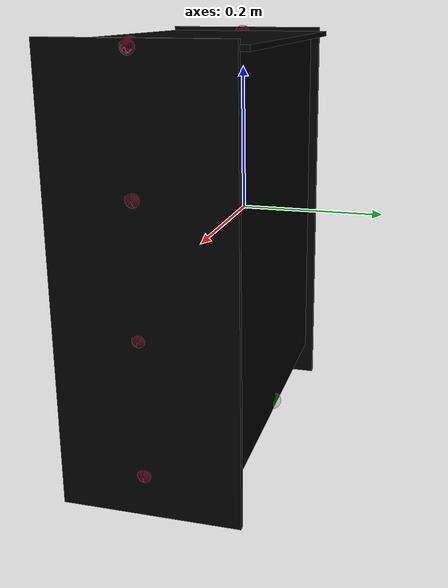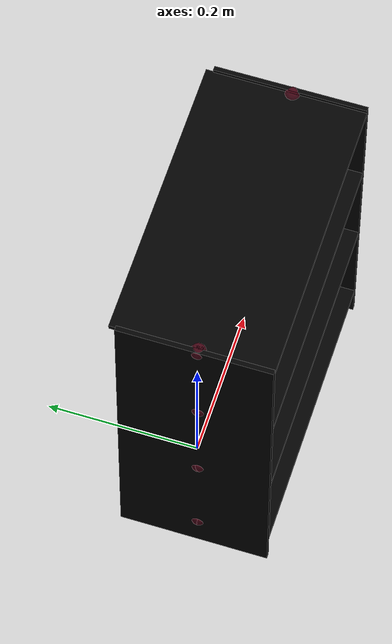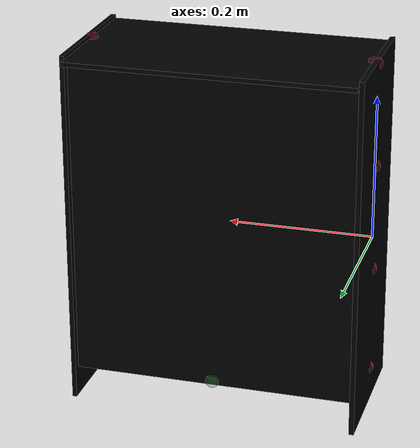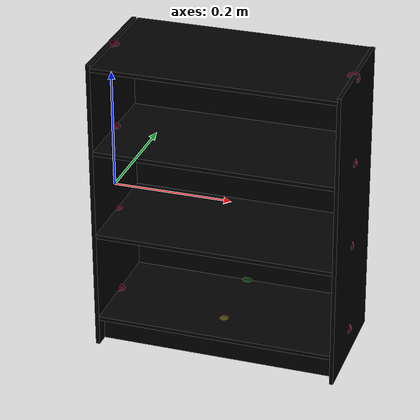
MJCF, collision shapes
<mujoco model="bookcase_billy_0190">
    <custom>
        <numeric data="-0.59152 0.200584 0.003247 0.50002 -0.49998 -0.50002 -0.49998" name="0_part0_initpos"/>
        <numeric data="0.204606 0.237244 0.003247 0.674164 0.0 0.0 0.738582" name="7_part7_initpos"/>
        <numeric data="-0.063768 0.239229 0.003247 0.688353 0.0 0.0 0.725376" name="6_part6_initpos"/>
        <numeric data="0.17315 -0.227664 0.001744 0.707089 0.707089 -0.005017 -0.005017" name="5_part5_initpos"/>
        <numeric data="-0.32363 0.248487 0.003247 0.69849 -0.0 -0.0 0.71562" name="4_part4_initpos"/>
        <numeric data="0.497228 0.203915 0.002886 0.499994 -0.500006 0.499994 0.500006" name="3_part3_initpos"/>
        <numeric data="-0.251576 -0.026907 0.003247 0.707101 0.7071 -0.00299 -0.00299" name="2_part2_initpos"/>
        <numeric data="-0.287173 -0.203213 0.003247 0.998793 0.0 0.0 -0.04911" name="1_part1_initpos"/>
    </custom>
    <asset>
        <mesh file="bookcase_billy_0190/0.stl" name="part0"
              scale="0.0005160960000000001 0.0005160960000000001 0.0005160960000000001"/>
        <mesh file="bookcase_billy_0190/7.stl" name="part7"
              scale="0.0005160960000000001 0.0005160960000000001 0.0005160960000000001"/>
        <mesh file="bookcase_billy_0190/6.stl" name="part6"
              scale="0.0005160960000000001 0.0005160960000000001 0.0005160960000000001"/>
        <mesh file="bookcase_billy_0190/5.stl" name="part5"
              scale="0.0005160960000000001 0.0005160960000000001 0.0005160960000000001"/>
        <mesh file="bookcase_billy_0190/4.stl" name="part4"
              scale="0.0005160960000000001 0.0005160960000000001 0.0005160960000000001"/>
        <mesh file="bookcase_billy_0190/3.stl" name="part3"
              scale="0.0005160960000000001 0.0005160960000000001 0.0005160960000000001"/>
        <mesh file="bookcase_billy_0190/2.stl" name="part2"
              scale="0.0005160960000000001 0.0005160960000000001 0.0005160960000000001"/>
        <mesh file="bookcase_billy_0190/1.stl" name="part1"
              scale="0.0005160960000000001 0.0005160960000000001 0.0005160960000000001"/>
    </asset>
    <equality>
        <weld active="false" body1="5_part5" body2="4_part4" solimp="1 1 0.5" solref="0.01 0.3"/>
        <weld active="false" body1="5_part5" body2="7_part7" solimp="1 1 0.5" solref="0.01 0.3"/>
        <weld active="false" body1="5_part5" body2="1_part1" solimp="1 1 0.5" solref="0.01 0.3"/>
        <weld active="false" body1="5_part5" body2="6_part6" solimp="1 1 0.5" solref="0.01 0.3"/>
        <weld active="false" body1="0_part0" body2="4_part4" solimp="1 1 0.5" solref="0.01 0.3"/>
        <weld active="false" body1="0_part0" body2="7_part7" solimp="1 1 0.5" solref="0.01 0.3"/>
        <weld active="false" body1="0_part0" body2="1_part1" solimp="1 1 0.5" solref="0.01 0.3"/>
        <weld active="false" body1="0_part0" body2="6_part6" solimp="1 1 0.5" solref="0.01 0.3"/>
        <weld active="false" body1="3_part3" body2="4_part4" solimp="1 1 0.5" solref="0.01 0.3"/>
        <weld active="false" body1="3_part3" body2="7_part7" solimp="1 1 0.5" solref="0.01 0.3"/>
        <weld active="false" body1="3_part3" body2="1_part1" solimp="1 1 0.5" solref="0.01 0.3"/>
        <weld active="false" body1="3_part3" body2="6_part6" solimp="1 1 0.5" solref="0.01 0.3"/>
        <weld active="false" body1="2_part2" body2="4_part4" solimp="1 1 0.5" solref="0.01 0.3"/>
        <weld active="false" body1="2_part2" body2="7_part7" solimp="1 1 0.5" solref="0.01 0.3"/>
        <weld active="false" body1="2_part2" body2="1_part1" solimp="1 1 0.5" solref="0.01 0.3"/>
        <weld active="false" body1="2_part2" body2="6_part6" solimp="1 1 0.5" solref="0.01 0.3"/>
    </equality>
    <worldbody>
        <body name="0_part0" pos="0.0 1.032192e-09 0.0" quat="1 0 0 0">
            <geom conaffinity="0" contype="0" density="0" mesh="part0" name="0_part0_mesh" pos="0.0 0.0 0.0"
                  rgba="0.82 0.71 0.55 1" type="mesh"/>
            <site name="0_part0_horizontal_radius_site" pos="0.0 1.032192e-09 0.0" quat="1 0 0 0" rgba="0 0 0 0"
                  size="0.010321919999999998"/>
            <site name="0_part0_top_site" pos="0.0 9.805824e-10 0.24906793274818562" quat="1 0 0 0" rgba="0 0 0 0"
                  size="0.010321919999999998"/>
            <site name="0_part0_bottom_site" pos="0.0 9.805824e-10 -0.24906793274818562" quat="1 0 0 0" rgba="0 0 0 0"
                  size="0.010321919999999998"/>
            <site name="0_part0_corner_site8" pos="-0.0032772096000000003 0.0983162979090432 0.24906793274818562"
                  quat="1 0 0 0" rgba="0 0 0 0" size="0.010321919999999998"/>
            <site name="0_part0_corner_site7" pos="0.0032772096000000003 0.0983162979090432 0.24906793274818562"
                  quat="1 0 0 0" rgba="0 0 0 0" size="0.010321919999999998"/>
            <site name="0_part0_corner_site6" pos="0.0032772096000000003 -0.09831629589626881 0.24906793274818562"
                  quat="1 0 0 0" rgba="0 0 0 0" size="0.010321919999999998"/>
            <site name="0_part0_corner_site5" pos="-0.0032772096000000003 -0.09831629589626881 0.24906793274818562"
                  quat="1 0 0 0" rgba="0 0 0 0" size="0.010321919999999998"/>
            <site name="0_part0_corner_site4" pos="-0.0032772096000000003 0.0983162979090432 -0.24906793274818562"
                  quat="1 0 0 0" rgba="0 0 0 0" size="0.010321919999999998"/>
            <site name="0_part0_corner_site3" pos="0.0032772096000000003 0.0983162979090432 -0.24906793274818562"
                  quat="1 0 0 0" rgba="0 0 0 0" size="0.010321919999999998"/>
            <site name="0_part0_corner_site2" pos="0.0032772096000000003 -0.09831629589626881 -0.24906793274818562"
                  quat="1 0 0 0" rgba="0 0 0 0" size="0.010321919999999998"/>
            <site name="0_part0_corner_site1" pos="-0.0032772096000000003 -0.09831629589626881 -0.24906793274818562"
                  quat="1 0 0 0" rgba="0 0 0 0" size="0.010321919999999998"/>
            <site name="sidepanel-horpanel,0,180,conn_site7" pos="0.004257791999999999 0.0 0.24579071999999996"
                  quat="0.7071067 0 -0.7071068 0" rgba="0.9019 0.0980 0.2941 0.3" size="0.010321919999999998"/>
            <site name="sidepanel-horpanel,0,180,conn_site6"
                  pos="0.0030965759999999993 -0.0016708608 0.10231603199999999" quat="0.7071067 0 -0.7071068 0"
                  rgba="0.9019 0.0980 0.2941 0.3" size="0.010321919999999998"/>
            <site name="sidepanel-horpanel,0,180,conn_site5" pos="0.0032256 -0.0016708608 -0.04773888"
                  quat="0.7071067 0 -0.7071068 0" rgba="0.9019 0.0980 0.2941 0.3" size="0.010321919999999998"/>
            <site name="sidepanel-horpanel,0,180,conn_site4" pos="0.0032256 -0.0016708608 -0.19998719999999998"
                  quat="0.7071067 0 -0.7071068 0" rgba="0.9019 0.0980 0.2941 0.3" size="0.010321919999999998"/>
            <geom density="50" name="noviz_collision_0_part0_0" pos="0.0001806336 0.0037223424 0.0023288831999999995"
                  quat="1 0 0 0" rgba="0 0 0 0" size="0.0034578431999999996 0.10203863040000001 0.2513968128"
                  solref="0.001 1" type="box"/>
        </body>
        <body name="7_part7" pos="0.199909787148288 -0.0033464315953152003 0.1021396950024192" quat="1 0 0 0">
            <geom conaffinity="0" contype="0" density="0" mesh="part7" name="7_part7_mesh" pos="0.0 0.0 0.0"
                  rgba="0.82 0.71 0.55 1" type="mesh"/>
            <site name="7_part7_horizontal_radius_site" pos="-1.5482879999999998e-09 1.4450688e-09 0.0" quat="1 0 0 0"
                  rgba="0 0 0 0" size="0.010321919999999998"/>
            <site name="7_part7_top_site" pos="-1.5482879999999998e-09 1.4966784e-09 0.0032772127481855997"
                  quat="1 0 0 0" rgba="0 0 0 0" size="0.010321919999999998"/>
            <site name="7_part7_bottom_site" pos="-1.5482879999999998e-09 1.4966784e-09 -0.0032772127481855997"
                  quat="1 0 0 0" rgba="0 0 0 0" size="0.010321919999999998"/>
            <site name="7_part7_corner_site8" pos="-0.19663257909657603 0.09496986481704958 0.0032772127481855997"
                  quat="1 0 0 0" rgba="0 0 0 0" size="0.010321919999999998"/>
            <site name="7_part7_corner_site7" pos="0.196632576 0.09496986481704958 0.0032772127481855997" quat="1 0 0 0"
                  rgba="0 0 0 0" size="0.010321919999999998"/>
            <site name="7_part7_corner_site6" pos="0.196632576 -0.0949698618753024 0.0032772127481855997" quat="1 0 0 0"
                  rgba="0 0 0 0" size="0.010321919999999998"/>
            <site name="7_part7_corner_site5" pos="-0.19663257909657603 -0.0949698618753024 0.0032772127481855997"
                  quat="1 0 0 0" rgba="0 0 0 0" size="0.010321919999999998"/>
            <site name="7_part7_corner_site4" pos="-0.19663257909657603 0.09496986481704958 -0.0032772127481855997"
                  quat="1 0 0 0" rgba="0 0 0 0" size="0.010321919999999998"/>
            <site name="7_part7_corner_site3" pos="0.196632576 0.09496986481704958 -0.0032772127481855997"
                  quat="1 0 0 0" rgba="0 0 0 0" size="0.010321919999999998"/>
            <site name="7_part7_corner_site2" pos="0.196632576 -0.0949698618753024 -0.0032772127481855997"
                  quat="1 0 0 0" rgba="0 0 0 0" size="0.010321919999999998"/>
            <site name="7_part7_corner_site1" pos="-0.19663257909657603 -0.0949698618753024 -0.0032772127481855997"
                  quat="1 0 0 0" rgba="0 0 0 0" size="0.010321919999999998"/>
            <site name="horpanel-sidepanel,0,180,conn_site6" pos="-0.1968132096 0.0016708608 0.0001741824"
                  quat="0.7071067 0 -0.7071068 0" rgba="0.9019 0.0980 0.2941 0.3" size="0.010321919999999998"/>
            <site name="horpanel-sidepanel,0,180,conn_site2" pos="0.1962584064 0.0016708608 -0.0008580096000000001"
                  quat="0.7071067 0 0.7071068 0" rgba="0.9019 0.0980 0.2941 0.3" size="0.010321919999999998"/>
            <geom density="50" name="noviz_collision_7_part7_0" pos="0.0 0.0 0.0" quat="1 0 0 0" rgba="0 0 0 0"
                  size="0.196632576 0.09496811520000001 0.0032772096000000003" solref="0.001 1" type="box"/>
        </body>
        <body name="6_part6" pos="0.199909787148288 -0.0033464315953152003 -0.046427141246976" quat="1 0 0 0">
            <geom conaffinity="0" contype="0" density="0" mesh="part6" name="6_part6_mesh" pos="0.0 0.0 0.0"
                  rgba="0.82 0.71 0.55 1" type="mesh"/>
            <site name="6_part6_horizontal_radius_site" pos="-1.5482879999999998e-09 1.4450688e-09 0.0" quat="1 0 0 0"
                  rgba="0 0 0 0" size="0.010321919999999998"/>
            <site name="6_part6_top_site" pos="-1.5482879999999998e-09 1.4966784e-09 0.0032772127481855997"
                  quat="1 0 0 0" rgba="0 0 0 0" size="0.010321919999999998"/>
            <site name="6_part6_bottom_site" pos="-1.5482879999999998e-09 1.4966784e-09 -0.0032772127481855997"
                  quat="1 0 0 0" rgba="0 0 0 0" size="0.010321919999999998"/>
            <site name="6_part6_corner_site8" pos="-0.19663257909657603 0.09496986481704958 0.0032772127481855997"
                  quat="1 0 0 0" rgba="0 0 0 0" size="0.010321919999999998"/>
            <site name="6_part6_corner_site7" pos="0.196632576 0.09496986481704958 0.0032772127481855997" quat="1 0 0 0"
                  rgba="0 0 0 0" size="0.010321919999999998"/>
            <site name="6_part6_corner_site6" pos="0.196632576 -0.0949698618753024 0.0032772127481855997" quat="1 0 0 0"
                  rgba="0 0 0 0" size="0.010321919999999998"/>
            <site name="6_part6_corner_site5" pos="-0.19663257909657603 -0.0949698618753024 0.0032772127481855997"
                  quat="1 0 0 0" rgba="0 0 0 0" size="0.010321919999999998"/>
            <site name="6_part6_corner_site4" pos="-0.19663257909657603 0.09496986481704958 -0.0032772127481855997"
                  quat="1 0 0 0" rgba="0 0 0 0" size="0.010321919999999998"/>
            <site name="6_part6_corner_site3" pos="0.196632576 0.09496986481704958 -0.0032772127481855997"
                  quat="1 0 0 0" rgba="0 0 0 0" size="0.010321919999999998"/>
            <site name="6_part6_corner_site2" pos="0.196632576 -0.0949698618753024 -0.0032772127481855997"
                  quat="1 0 0 0" rgba="0 0 0 0" size="0.010321919999999998"/>
            <site name="6_part6_corner_site1" pos="-0.19663257909657603 -0.0949698618753024 -0.0032772127481855997"
                  quat="1 0 0 0" rgba="0 0 0 0" size="0.010321919999999998"/>
            <site name="horpanel-sidepanel,0,180,conn_site5" pos="-0.1966841856 0.0016708608 -0.0013095936000000002"
                  quat="0.7071067 0 -0.7071068 0" rgba="0.9019 0.0980 0.2941 0.3" size="0.010321919999999998"/>
            <site name="horpanel-sidepanel,0,180,conn_site1" pos="0.1955487744 0.0016708608 0.0006257664000000001"
                  quat="0.7071067 0 0.7071068 0" rgba="0.9019 0.0980 0.2941 0.3" size="0.010321919999999998"/>
            <geom density="50" name="noviz_collision_6_part6_0" pos="0.0 0.0 0.0" quat="1 0 0 0" rgba="0 0 0 0"
                  size="0.196632576 0.09496811520000001 0.0032772096000000003" solref="0.001 1" type="box"/>
        </body>
        <body name="5_part5" pos="0.19990978560000003 0.09340047272263681 0.0196632544518144" quat="1 0 0 0">
            <geom conaffinity="0" contype="0" density="0" mesh="part5" name="5_part5_mesh" pos="0.0 0.0 0.0"
                  rgba="0.82 0.71 0.55 1" type="mesh"/>
            <site name="5_part5_horizontal_radius_site" pos="1.032192e-10 0.0 0.0" quat="1 0 0 0" rgba="0 0 0 0"
                  size="0.010321919999999998"/>
            <site name="5_part5_top_site" pos="1.032192e-10 0.0 0.22612746239999998" quat="1 0 0 0" rgba="0 0 0 0"
                  size="0.010321919999999998"/>
            <site name="5_part5_bottom_site" pos="1.032192e-10 0.0 -0.22612746239999998" quat="1 0 0 0" rgba="0 0 0 0"
                  size="0.010321919999999998"/>
            <site name="5_part5_corner_site8" pos="-0.19827118069678082 0.0017770625703936 0.22612746239999998"
                  quat="1 0 0 0" rgba="0 0 0 0" size="0.010321919999999998"/>
            <site name="5_part5_corner_site7" pos="0.1982711809032192 0.0017770625703936 0.22612746239999998"
                  quat="1 0 0 0" rgba="0 0 0 0" size="0.010321919999999998"/>
            <site name="5_part5_corner_site6" pos="0.1982711809032192 -0.001777062518784 0.22612746239999998"
                  quat="1 0 0 0" rgba="0 0 0 0" size="0.010321919999999998"/>
            <site name="5_part5_corner_site5" pos="-0.19827118069678082 -0.001777062518784 0.22612746239999998"
                  quat="1 0 0 0" rgba="0 0 0 0" size="0.010321919999999998"/>
            <site name="5_part5_corner_site4" pos="-0.19827118069678082 0.0017770625703936 -0.22612746239999998"
                  quat="1 0 0 0" rgba="0 0 0 0" size="0.010321919999999998"/>
            <site name="5_part5_corner_site3" pos="0.1982711809032192 0.0017770625703936 -0.22612746239999998"
                  quat="1 0 0 0" rgba="0 0 0 0" size="0.010321919999999998"/>
            <site name="5_part5_corner_site2" pos="0.1982711809032192 -0.001777062518784 -0.22612746239999998"
                  quat="1 0 0 0" rgba="0 0 0 0" size="0.010321919999999998"/>
            <site name="5_part5_corner_site1" pos="-0.19827118069678082 -0.001777062518784 -0.22612746239999998"
                  quat="1 0 0 0" rgba="0 0 0 0" size="0.010321919999999998"/>
            <geom density="50" name="noviz_collision_5_part5_0" pos="0.0 0.0 -3.87072e-05" quat="1 0 0 0" rgba="0 0 0 0"
                  size="0.19827118079999997 0.00177408 0.2260887552" solref="0.001 1" type="box"/>
            <site name="backpanel-horpanel,0,180,conn_site1" pos="0.0 -0.001628928 -0.22121164799999998" quat="1 0 0 0"
                  rgba="0.2352 0.7058 0.2941 0.3" size="0.010321919999999998"/>
        </body>
        <body name="4_part4" pos="0.199909787148288 1.032192e-09 0.24579071999999996" quat="1 0 0 0">
            <geom conaffinity="0" contype="0" density="0" mesh="part4" name="4_part4_mesh" pos="0.0 0.0 0.0"
                  rgba="0.82 0.71 0.55 1" type="mesh"/>
            <site name="4_part4_horizontal_radius_site" pos="-1.5482879999999998e-09 1.032192e-09 -0.0" quat="1 0 0 0"
                  rgba="0 0 0 0" size="0.010321919999999998"/>
            <site name="4_part4_top_site" pos="-1.5482879999999998e-09 9.805824e-10 0.0032772127481855997"
                  quat="1 0 0 0" rgba="0 0 0 0" size="0.010321919999999998"/>
            <site name="4_part4_bottom_site" pos="-1.5482879999999998e-09 9.805824e-10 -0.0032772127481855997"
                  quat="1 0 0 0" rgba="0 0 0 0" size="0.010321919999999998"/>
            <site name="4_part4_corner_site8" pos="-0.19663257909657603 0.0983162979090432 0.0032772127481855997"
                  quat="1 0 0 0" rgba="0 0 0 0" size="0.010321919999999998"/>
            <site name="4_part4_corner_site7" pos="0.196632576 0.0983162979090432 0.0032772127481855997" quat="1 0 0 0"
                  rgba="0 0 0 0" size="0.010321919999999998"/>
            <site name="4_part4_corner_site6" pos="0.196632576 -0.09831629589626881 0.0032772127481855997"
                  quat="1 0 0 0" rgba="0 0 0 0" size="0.010321919999999998"/>
            <site name="4_part4_corner_site5" pos="-0.19663257909657603 -0.09831629589626881 0.0032772127481855997"
                  quat="1 0 0 0" rgba="0 0 0 0" size="0.010321919999999998"/>
            <site name="4_part4_corner_site4" pos="-0.19663257909657603 0.0983162979090432 -0.0032772127481855997"
                  quat="1 0 0 0" rgba="0 0 0 0" size="0.010321919999999998"/>
            <site name="4_part4_corner_site3" pos="0.196632576 0.0983162979090432 -0.0032772127481855997" quat="1 0 0 0"
                  rgba="0 0 0 0" size="0.010321919999999998"/>
            <site name="4_part4_corner_site2" pos="0.196632576 -0.09831629589626881 -0.0032772127481855997"
                  quat="1 0 0 0" rgba="0 0 0 0" size="0.010321919999999998"/>
            <site name="4_part4_corner_site1" pos="-0.19663257909657603 -0.09831629589626881 -0.0032772127481855997"
                  quat="1 0 0 0" rgba="0 0 0 0" size="0.010321919999999998"/>
            <site name="horpanel-sidepanel,0,180,conn_site7" pos="-0.1956519936 0.0 0.0" quat="0.7071067 0 -0.7071068 0"
                  rgba="0.9019 0.0980 0.2941 0.3" size="0.010321919999999998"/>
            <site name="horpanel-sidepanel,0,180,conn_site3" pos="0.1962584064 0.0 0.0" quat="0.7071067 0 0.7071068 0"
                  rgba="0.9019 0.0980 0.2941 0.3" size="0.010321919999999998"/>
            <geom density="50" name="noviz_collision_4_part4_0" pos="0.0007031807999999999 0.0086575104 -0.0001741824"
                  quat="1 0 0 0" rgba="0 0 0 0" size="0.19733575679999998 0.10697379839999999 0.0031030272"
                  solref="0.001 1" type="box"/>
        </body>
        <body name="3_part3" pos="0.39981957754798075 1.032192e-09 0.0" quat="1 0 0 0">
            <geom conaffinity="0" contype="0" density="0" mesh="part3" name="3_part3_mesh" pos="0.0 0.0 0.0"
                  rgba="0.82 0.71 0.55 1" type="mesh"/>
            <site name="3_part3_horizontal_radius_site" pos="0.0 1.032192e-09 0.0" quat="1 0 0 0" rgba="0 0 0 0"
                  size="0.010321919999999998"/>
            <site name="3_part3_top_site" pos="5.16096e-11 9.805824e-10 0.24906793274818562" quat="1 0 0 0"
                  rgba="0 0 0 0" size="0.010321919999999998"/>
            <site name="3_part3_bottom_site" pos="5.16096e-11 9.805824e-10 -0.24906793274818562" quat="1 0 0 0"
                  rgba="0 0 0 0" size="0.010321919999999998"/>
            <site name="3_part3_corner_site8" pos="-0.0032772158963712008 0.0983162979090432 0.24906793274818562"
                  quat="1 0 0 0" rgba="0 0 0 0" size="0.010321919999999998"/>
            <site name="3_part3_corner_site7" pos="0.0032772159479808 0.0983162979090432 0.24906793274818562"
                  quat="1 0 0 0" rgba="0 0 0 0" size="0.010321919999999998"/>
            <site name="3_part3_corner_site6" pos="0.0032772159479808 -0.09831629589626881 0.24906793274818562"
                  quat="1 0 0 0" rgba="0 0 0 0" size="0.010321919999999998"/>
            <site name="3_part3_corner_site5" pos="-0.0032772158963712008 -0.09831629589626881 0.24906793274818562"
                  quat="1 0 0 0" rgba="0 0 0 0" size="0.010321919999999998"/>
            <site name="3_part3_corner_site4" pos="-0.0032772158963712008 0.0983162979090432 -0.24906793274818562"
                  quat="1 0 0 0" rgba="0 0 0 0" size="0.010321919999999998"/>
            <site name="3_part3_corner_site3" pos="0.0032772159479808 0.0983162979090432 -0.24906793274818562"
                  quat="1 0 0 0" rgba="0 0 0 0" size="0.010321919999999998"/>
            <site name="3_part3_corner_site2" pos="0.0032772159479808 -0.09831629589626881 -0.24906793274818562"
                  quat="1 0 0 0" rgba="0 0 0 0" size="0.010321919999999998"/>
            <site name="3_part3_corner_site1" pos="-0.0032772158963712008 -0.09831629589626881 -0.24906793274818562"
                  quat="1 0 0 0" rgba="0 0 0 0" size="0.010321919999999998"/>
            <site name="sidepanel-horpanel,0,180,conn_site3" pos="-0.0036513792 0.0 0.24579071999999996"
                  quat="0.7071067 0 0.7071068 0" rgba="0.9019 0.0980 0.2941 0.3" size="0.010321919999999998"/>
            <site name="sidepanel-horpanel,0,180,conn_site2" pos="-0.0036513792 -0.0016708608 0.10128384000000001"
                  quat="0.7071067 0 0.7071068 0" rgba="0.9019 0.0980 0.2941 0.3" size="0.010321919999999998"/>
            <site name="sidepanel-horpanel,0,180,conn_site1" pos="-0.0043610112 -0.0016708608 -0.04580351999999999"
                  quat="0.7071067 0 0.7071068 0" rgba="0.9019 0.0980 0.2941 0.3" size="0.010321919999999998"/>
            <site name="sidepanel-horpanel,0,180,conn_site0" pos="-0.0037158912 -0.0016708608 -0.20127744"
                  quat="0.7071067 0 0.7071068 0" rgba="0.9019 0.0980 0.2941 0.3" size="0.010321919999999998"/>
            <geom density="50" name="noviz_collision_3_part3_0" pos="-0.0001806336 0.0037223424 0.0023288831999999995"
                  quat="1 0 0 0" rgba="0 0 0 0" size="0.0030965759999999993 0.10203863040000001 0.2513968128"
                  solref="0.001 1" type="box"/>
        </body>
        <body name="2_part2" pos="0.199909787148288 -0.07246294013952 -0.2261274651353088" quat="1 0 0 0">
            <geom conaffinity="0" contype="0" density="0" mesh="part2" name="2_part2_mesh" pos="0.0 0.0 0.0"
                  rgba="0.82 0.71 0.55 1" type="mesh"/>
            <site name="2_part2_horizontal_radius_site" pos="-1.5482879999999998e-09 -0.0 -0.0" quat="1 0 0 0"
                  rgba="0 0 0 0" size="0.010321919999999998"/>
            <site name="2_part2_top_site" pos="-1.5482879999999998e-09 -5.16096e-11 0.022940467612876797" quat="1 0 0 0"
                  rgba="0 0 0 0" size="0.010321919999999998"/>
            <site name="2_part2_bottom_site" pos="-1.5482879999999998e-09 -5.16096e-11 -0.022940467612876797"
                  quat="1 0 0 0" rgba="0 0 0 0" size="0.010321919999999998"/>
            <site name="2_part2_corner_site8" pos="-0.19663257909657603 0.0032772122320895995 0.022940467612876797"
                  quat="1 0 0 0" rgba="0 0 0 0" size="0.010321919999999998"/>
            <site name="2_part2_corner_site7" pos="0.196632576 0.0032772122320895995 0.022940467612876797"
                  quat="1 0 0 0" rgba="0 0 0 0" size="0.010321919999999998"/>
            <site name="2_part2_corner_site6" pos="0.196632576 -0.0032772122836992003 0.022940467612876797"
                  quat="1 0 0 0" rgba="0 0 0 0" size="0.010321919999999998"/>
            <site name="2_part2_corner_site5" pos="-0.19663257909657603 -0.0032772122836992003 0.022940467612876797"
                  quat="1 0 0 0" rgba="0 0 0 0" size="0.010321919999999998"/>
            <site name="2_part2_corner_site4" pos="-0.19663257909657603 0.0032772122320895995 -0.022940467612876797"
                  quat="1 0 0 0" rgba="0 0 0 0" size="0.010321919999999998"/>
            <site name="2_part2_corner_site3" pos="0.196632576 0.0032772122320895995 -0.022940467612876797"
                  quat="1 0 0 0" rgba="0 0 0 0" size="0.010321919999999998"/>
            <site name="2_part2_corner_site2" pos="0.196632576 -0.0032772122836992003 -0.022940467612876797"
                  quat="1 0 0 0" rgba="0 0 0 0" size="0.010321919999999998"/>
            <site name="2_part2_corner_site1" pos="-0.19663257909657603 -0.0032772122836992003 -0.022940467612876797"
                  quat="1 0 0 0" rgba="0 0 0 0" size="0.010321919999999998"/>
            <site name="botsupport-horpanel,0,180,conn_site1" pos="0.0 0.0345590784 0.0229404672" quat="0 1 0 0"
                  rgba="1.0 0.8823 0.0980 0.3" size="0.010321919999999998"/>
            <geom density="50" name="noviz_collision_2_part2_0" pos="0.0 0.0 -3.87072e-05" quat="1 0 0 0" rgba="0 0 0 0"
                  size="0.196632576 0.0032772096000000003 0.022901759999999997" solref="0.001 1" type="box"/>
        </body>
        <body name="1_part1" pos="0.199909787148288 -0.0033464315953152003 -0.1999097887481856" quat="1 0 0 0">
            <geom conaffinity="0" contype="0" density="0" mesh="part1" name="1_part1_mesh" pos="0.0 0.0 0.0"
                  rgba="0.82 0.71 0.55 1" type="mesh"/>
            <site name="1_part1_horizontal_radius_site" pos="-1.5482879999999998e-09 1.4450688e-09 0.0" quat="1 0 0 0"
                  rgba="0 0 0 0" size="0.010321919999999998"/>
            <site name="1_part1_top_site" pos="-1.5482879999999998e-09 1.4966784e-09 0.0032772096000000003"
                  quat="1 0 0 0" rgba="0 0 0 0" size="0.010321919999999998"/>
            <site name="1_part1_bottom_site" pos="-1.5482879999999998e-09 1.4966784e-09 -0.0032772096000000003"
                  quat="1 0 0 0" rgba="0 0 0 0" size="0.010321919999999998"/>
            <site name="1_part1_corner_site8" pos="-0.19663257909657603 0.09496986481704958 0.0032772096000000003"
                  quat="1 0 0 0" rgba="0 0 0 0" size="0.010321919999999998"/>
            <site name="1_part1_corner_site7" pos="0.196632576 0.09496986481704958 0.0032772096000000003" quat="1 0 0 0"
                  rgba="0 0 0 0" size="0.010321919999999998"/>
            <site name="1_part1_corner_site6" pos="0.196632576 -0.0949698618753024 0.0032772096000000003" quat="1 0 0 0"
                  rgba="0 0 0 0" size="0.010321919999999998"/>
            <site name="1_part1_corner_site5" pos="-0.19663257909657603 -0.0949698618753024 0.0032772096000000003"
                  quat="1 0 0 0" rgba="0 0 0 0" size="0.010321919999999998"/>
            <site name="1_part1_corner_site4" pos="-0.19663257909657603 0.09496986481704958 -0.0032772096000000003"
                  quat="1 0 0 0" rgba="0 0 0 0" size="0.010321919999999998"/>
            <site name="1_part1_corner_site3" pos="0.196632576 0.09496986481704958 -0.0032772096000000003"
                  quat="1 0 0 0" rgba="0 0 0 0" size="0.010321919999999998"/>
            <site name="1_part1_corner_site2" pos="0.196632576 -0.0949698618753024 -0.0032772096000000003"
                  quat="1 0 0 0" rgba="0 0 0 0" size="0.010321919999999998"/>
            <site name="1_part1_corner_site1" pos="-0.19663257909657603 -0.0949698618753024 -0.0032772096000000003"
                  quat="1 0 0 0" rgba="0 0 0 0" size="0.010321919999999998"/>
            <site name="horpanel-sidepanel,0,180,conn_site4" pos="-0.1966841856 0.0016708608 -7.74144e-05"
                  quat="0.7071067 0 -0.7071068 0" rgba="0.9019 0.0980 0.2941 0.3" size="0.010321919999999998"/>
            <site name="horpanel-sidepanel,0,180,conn_site0" pos="0.19619389439999999 0.0016708608 -0.0013676544"
                  quat="0.7071067 0 0.7071068 0" rgba="0.9019 0.0980 0.2941 0.3" size="0.010321919999999998"/>
            <site name="horpanel-botsupport,0,180,conn_site1" pos="0.0 -0.0345590784 -0.0032772096000000003"
                  quat="0 1 0 0" rgba="1.0 0.8823 0.0980 0.3" size="0.010321919999999998"/>
            <geom density="50" name="noviz_collision_1_part1_0" pos="0.0008128511999999999 0.0 -2.5804800000000004e-05"
                  quat="1 0 0 0" rgba="0 0 0 0" size="0.1974454272 0.09496811520000001 0.0032514047999999997"
                  solref="0.001 1" type="box"/>
            <site name="horpanel-backpanel,0,180,conn_site1" pos="0.0 0.09511488 -0.0016369919999999999" quat="1 0 0 0"
                  rgba="0.2352 0.7058 0.2941 0.3" size="0.010321919999999998"/>
        </body>
    </worldbody>
    <actuator/>
    <sensor/>
    <contact/>
    <default/>
</mujoco>
